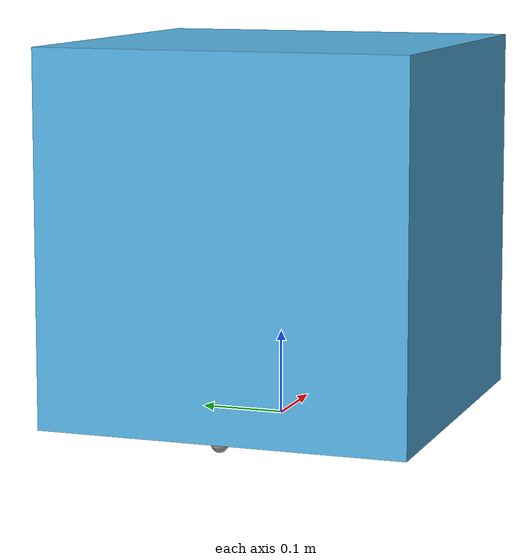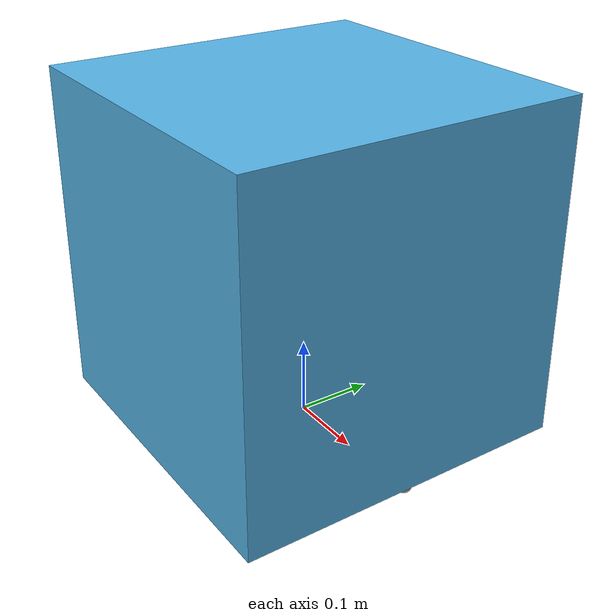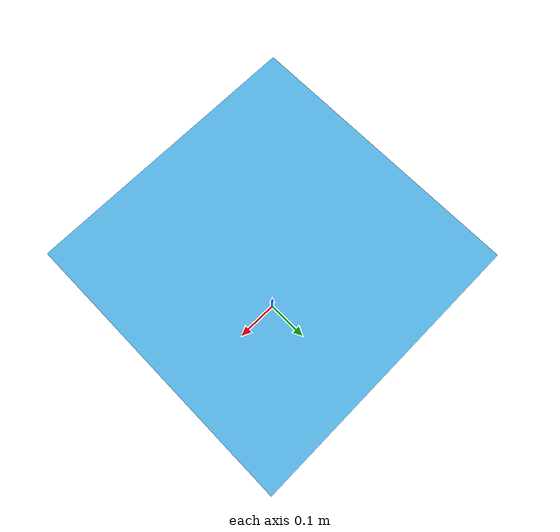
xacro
<?xml version="1.0" ?>
<robot name="body"
    xmlns:xacro="http://ros.org/wiki/xacro">
    <link name="base_link" />

    <xacro:property name="b_m" value="5.58"/>
    <xacro:property name="b_m2" value="${b_m/12}"/>
    <!--for calculation of inertia-->
    <xacro:property name="b_w" value="0.44"/>
    <xacro:property name="b_h" value="0.44"/>
    <xacro:property name="b_d" value="0.44"/>

    <link name="body">
        <visual>
            <geometry>
                <box size="${b_d} ${b_w} ${b_h}" />
            </geometry>
        </visual>
        <collision>
            <geometry>
                <box size="${b_d*0.95} ${b_w*0.95} ${b_h*0.95}" />
            </geometry>
        </collision>
        <inertial>
            <origin xyz="0 0 0" rpy="0 0 0" />
            <mass value="${b_m}" />
            <inertia ixx="${b_m2*(b_h*b_h+b_w*b_w)}" ixy="0" ixz="0" iyx="0" iyy="${b_m2*(b_h*b_h+b_d*b_d)}" iyz="0" izx="0" izy="0" izz="${b_m2*(b_w*b_w+b_d*b_d)}" />
        </inertial>
    </link>

    <joint name="body_joint" type="fixed">
        <parent link="base_link" />
        <child link="body" />
        <origin xyz="0 0 0.230" rpy="0 0 0" />
    </joint>

    <!--support wheel-->
    <joint name="ball_joint_1" type="fixed">
        <parent link="base_link"/>
        <child link="ball_link_1"/>
        <origin xyz="0.21 0 0.01" rpy="0 0 0"/>
    </joint>
    <link name="ball_link_1">
        <visual>
            <origin xyz="0 0 0" rpy="0 0 0" />
            <geometry>
                <sphere radius="0.01" />
            </geometry>
            <material name="gray" />
        </visual>
        <collision>
            <origin xyz="0 0 0" rpy="0 0 0" />
            <geometry>
                <sphere radius="0.01" />
            </geometry>
            <material name="gray" />
        </collision>
    </link>
    <gazebo reference="ball_link_1">
        <material>Gazebo/Gray</material>
        <mu1 value="0.5" />
        <mu2 value="0.5" />
    </gazebo>

    <joint name="ball_joint_2" type="fixed">
        <parent link="base_link"/>
        <child link="ball_link_2"/>
        <origin xyz="-0.21 0 0.01" rpy="0 0 0"/>
    </joint>
    <link name="ball_link_2">
        <visual>
            <origin xyz="0 0 0" rpy="0 0 0" />
            <geometry>
                <sphere radius="0.01" />
            </geometry>
            <material name="gray" />
        </visual>
        <collision>
            <origin xyz="0 0 0" rpy="0 0 0" />
            <geometry>
                <sphere radius="0.01" />
            </geometry>
            <material name="gray" />
        </collision>
    </link>
    <gazebo reference="ball_link_2">
        <material>Gazebo/Gray</material>
        <mu1 value="0.5" />
        <mu2 value="0.5" />
    </gazebo>

</robot>
